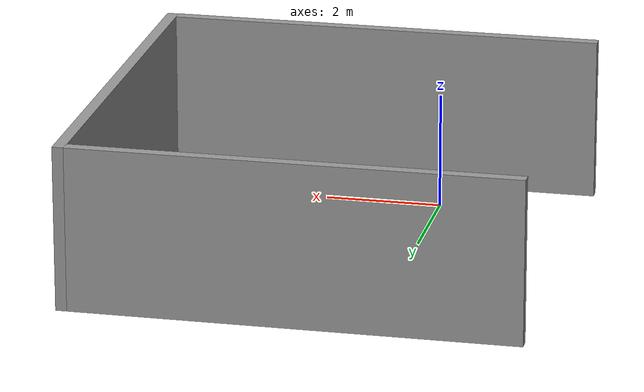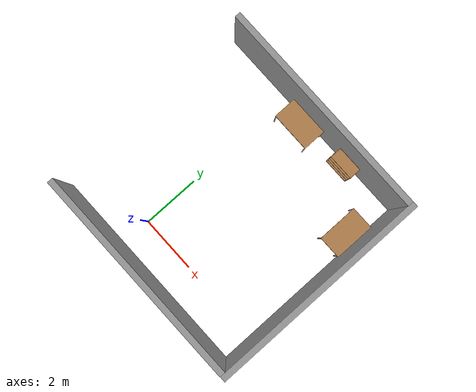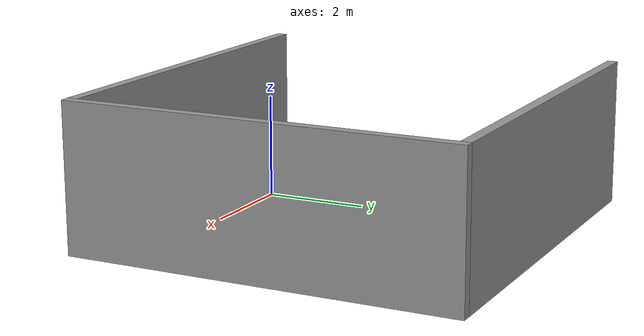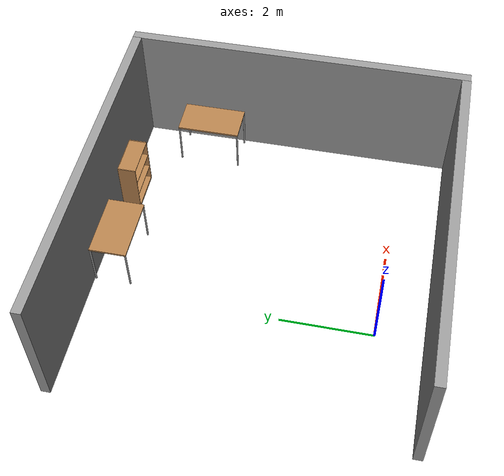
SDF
<sdf version="1.6">
 <world name="default">
  <model name="bookshelf">
   <static>1</static>
   <link name="link">
    <inertial><mass>1</mass></inertial>
    <collision name="back">
     <pose>0 0.005 0.6 0 -0 0</pose>
     <geometry><box><size>0.9 0.01 1.2</size></box></geometry>
    </collision>
    <visual name="visual1">
     <pose>0 0.005 0.6 0 -0 0</pose>
     <geometry><box><size>0.9 0.01 1.2</size></box></geometry>
     <material>
      <script><uri>file://media/materials/scripts/gazebo.material</uri><name>Gazebo/Wood</name></script>
     </material>
    </visual>
    <collision name="left_side">
     <pose>0.45 -0.195 0.6 0 -0 0</pose>
     <geometry><box><size>0.02 0.4 1.2</size></box></geometry>
    </collision>
    <visual name="visual2">
     <pose>0.45 -0.195 0.6 0 -0 0</pose>
     <geometry><box><size>0.02 0.4 1.2</size></box></geometry>
     <material>
      <script><uri>file://media/materials/scripts/gazebo.material</uri><name>Gazebo/Wood</name></script>
     </material>
    </visual>
    <collision name="right_side">
     <pose>-0.45 -0.195 0.6 0 -0 0</pose>
     <geometry><box><size>0.02 0.4 1.2</size></box></geometry>
    </collision>
    <visual name="visual3">
     <pose>-0.45 -0.195 0.6 0 -0 0</pose>
     <geometry><box><size>0.02 0.4 1.2</size></box></geometry>
     <material>
      <script><uri>file://media/materials/scripts/gazebo.material</uri><name>Gazebo/Wood</name></script>
     </material>
    </visual>
    <collision name="bottom">
     <pose>0 -0.195 0.03 0 -0 0</pose>
     <geometry><box><size>0.88 0.4 0.06</size></box></geometry>
    </collision>
    <visual name="visual4">
     <pose>0 -0.195 0.03 0 -0 0</pose>
     <geometry><box><size>0.88 0.4 0.06</size></box></geometry>
     <material>
      <script><uri>file://media/materials/scripts/gazebo.material</uri><name>Gazebo/Wood</name></script>
     </material>
    </visual>
    <collision name="top">
     <pose>0 -0.195 1.19 0 -0 0</pose>
     <geometry><box><size>0.88 0.4 0.02</size></box></geometry>
    </collision>
    <visual name="visual5">
     <pose>0 -0.195 1.19 0 -0 0</pose>
     <geometry><box><size>0.88 0.4 0.02</size></box></geometry>
     <material>
      <script><uri>file://media/materials/scripts/gazebo.material</uri><name>Gazebo/Wood</name></script>
     </material>
    </visual>
    <collision name="low_shelf">
     <pose>0 -0.195 0.43 0 -0 0</pose>
     <geometry><box><size>0.88 0.4 0.02</size></box></geometry>
    </collision>
    <visual name="visual6">
     <pose>0 -0.195 0.43 0 -0 0</pose>
     <geometry><box><size>0.88 0.4 0.02</size></box></geometry>
     <material>
      <script><uri>file://media/materials/scripts/gazebo.material</uri><name>Gazebo/Wood</name></script>
     </material>
    </visual>
    <collision name="high_shelf">
     <pose>0 -0.195 0.8 0 -0 0</pose>
     <geometry><box><size>0.88 0.4 0.02</size></box></geometry>
    </collision>
    <visual name="visual7">
     <pose>0 -0.195 0.8 0 -0 0</pose>
     <geometry><box><size>0.88 0.4 0.02</size></box></geometry>
     <material>
      <script><uri>file://media/materials/scripts/gazebo.material</uri><name>Gazebo/Wood</name></script>
     </material>
    </visual>
    <velocity_decay><linear>0</linear><angular>0</angular></velocity_decay>
   </link>
   <pose>2.86492 6.07043 0 0 -0 0</pose>
  </model>
  <model name="grey_wall_0">
   <static>1</static>
   <link name="link">
    <pose>0 0 1.4 0 -0 0</pose>
    <collision name="collision"><geometry><box><size>7.5 0.2 2.8</size></box></geometry></collision>
    <visual name="visual">
     <cast_shadows>0</cast_shadows>
     <geometry><box><size>7.5 0.2 2.8</size></box></geometry>
     <material>
      <script>
       <uri>model://grey_wall/materials/scripts</uri>
       <uri>model://grey_wall/materials/textures</uri>
       <name>vrc/grey_wall</name>
      </script>
     </material>
    </visual>
   </link>
   <pose>1.21272 6.18656 0 0 -0 0</pose>
  </model>
  <model name="grey_wall_0_clone">
   <static>1</static>
   <link name="link">
    <pose>0 0 1.4 0 -0 0</pose>
    <collision name="collision"><geometry><box><size>7.5 0.2 2.8</size></box></geometry></collision>
    <visual name="visual">
     <cast_shadows>0</cast_shadows>
     <geometry><box><size>7.5 0.2 2.8</size></box></geometry>
     <material>
      <script>
       <uri>model://grey_wall/materials/scripts</uri>
       <uri>model://grey_wall/materials/textures</uri>
       <name>vrc/grey_wall</name>
      </script>
     </material>
    </visual>
   </link>
   <pose>1.20599 -1.12598 0 0 -0 0</pose>
  </model>
  <model name="grey_wall_clone">
   <static>1</static>
   <link name="link">
    <pose>0 0 1.4 0 -0 0</pose>
    <collision name="collision"><geometry><box><size>7.5 0.2 2.8</size></box></geometry></collision>
    <visual name="visual">
     <cast_shadows>0</cast_shadows>
     <geometry><box><size>7.5 0.2 2.8</size></box></geometry>
     <material>
      <script>
       <uri>model://grey_wall/materials/scripts</uri>
       <uri>model://grey_wall/materials/textures</uri>
       <name>vrc/grey_wall</name>
      </script>
     </material>
    </visual>
   </link>
   <pose>5.0505 2.53584 0 0 -0 1.57079</pose>
  </model>
  <model name="table">
   <static>0</static>
   <link name="link">
    <collision name="surface">
     <pose>0 0 1 0 -0 0</pose>
     <geometry><box><size>1.5 0.8 0.03</size></box></geometry>
     <surface><friction><ode><mu>0.6</mu><mu2>0.6</mu2></ode></friction></surface>
    </collision>
    <visual name="visual1">
     <pose>0 0 1 0 -0 0</pose>
     <geometry><box><size>1.4 0.8 0.04</size></box></geometry>
     <material>
      <script><uri>file://media/materials/scripts/gazebo.material</uri><name>Gazebo/Wood</name></script>
     </material>
    </visual>
    <collision name="front_left_leg">
     <pose>0.68 0.38 0.5 0 -0 0</pose>
     <geometry><cylinder><radius>0.02</radius><length>1</length></cylinder></geometry>
    </collision>
    <visual name="front_left_leg">
     <pose>0.68 0.38 0.5 0 -0 0</pose>
     <geometry><cylinder><radius>0.02</radius><length>1</length></cylinder></geometry>
     <material>
      <script><uri>file://media/materials/scripts/gazebo.material</uri><name>Gazebo/Grey</name></script>
     </material>
    </visual>
    <collision name="front_right_leg">
     <pose>0.68 -0.38 0.5 0 -0 0</pose>
     <geometry><cylinder><radius>0.02</radius><length>1</length></cylinder></geometry>
    </collision>
    <visual name="front_right_leg">
     <pose>0.68 -0.38 0.5 0 -0 0</pose>
     <geometry><cylinder><radius>0.02</radius><length>1</length></cylinder></geometry>
     <material>
      <script><uri>file://media/materials/scripts/gazebo.material</uri><name>Gazebo/Grey</name></script>
     </material>
    </visual>
    <collision name="back_right_leg">
     <pose>-0.68 -0.38 0.5 0 -0 0</pose>
     <geometry><cylinder><radius>0.02</radius><length>1</length></cylinder></geometry>
    </collision>
    <visual name="back_right_leg">
     <pose>-0.68 -0.38 0.5 0 -0 0</pose>
     <geometry><cylinder><radius>0.02</radius><length>1</length></cylinder></geometry>
     <material>
      <script><uri>file://media/materials/scripts/gazebo.material</uri><name>Gazebo/Grey</name></script>
     </material>
    </visual>
    <collision name="back_left_leg">
     <pose>-0.68 0.38 0.5 0 -0 0</pose>
     <geometry><cylinder><radius>0.02</radius><length>1</length></cylinder></geometry>
    </collision>
    <visual name="back_left_leg">
     <pose>-0.68 0.38 0.5 0 -0 0</pose>
     <geometry><cylinder><radius>0.02</radius><length>1</length></cylinder></geometry>
     <material>
      <script><uri>file://media/materials/scripts/gazebo.material</uri><name>Gazebo/Grey</name></script>
     </material>
    </visual>
    <inertial>
     <inertia><ixx>1</ixx><ixy>0</ixy><ixz>0</ixz><iyy>1</iyy><iyz>0</iyz><izz>1</izz></inertia>
     <mass>1</mass>
    </inertial>
   </link>
   <pose>0.978898 5.67676 -0.000134 0 0.000205 0</pose>
  </model>
  <model name="table_0">
   <static>0</static>
   <link name="link">
    <collision name="surface">
     <pose>0 0 1 0 -0 0</pose>
     <geometry><box><size>1.5 0.8 0.03</size></box></geometry>
     <surface><friction><ode><mu>0.6</mu><mu2>0.6</mu2></ode></friction></surface>
    </collision>
    <visual name="visual1">
     <pose>0 0 1 0 -0 0</pose>
     <geometry><box><size>1.4 0.8 0.04</size></box></geometry>
     <material>
      <script><uri>file://media/materials/scripts/gazebo.material</uri><name>Gazebo/Wood</name></script>
     </material>
    </visual>
    <collision name="front_left_leg">
     <pose>0.68 0.38 0.5 0 -0 0</pose>
     <geometry><cylinder><radius>0.02</radius><length>1</length></cylinder></geometry>
    </collision>
    <visual name="front_left_leg">
     <pose>0.68 0.38 0.5 0 -0 0</pose>
     <geometry><cylinder><radius>0.02</radius><length>1</length></cylinder></geometry>
     <material>
      <script><uri>file://media/materials/scripts/gazebo.material</uri><name>Gazebo/Grey</name></script>
     </material>
    </visual>
    <collision name="front_right_leg">
     <pose>0.68 -0.38 0.5 0 -0 0</pose>
     <geometry><cylinder><radius>0.02</radius><length>1</length></cylinder></geometry>
    </collision>
    <visual name="front_right_leg">
     <pose>0.68 -0.38 0.5 0 -0 0</pose>
     <geometry><cylinder><radius>0.02</radius><length>1</length></cylinder></geometry>
     <material>
      <script><uri>file://media/materials/scripts/gazebo.material</uri><name>Gazebo/Grey</name></script>
     </material>
    </visual>
    <collision name="back_right_leg">
     <pose>-0.68 -0.38 0.5 0 -0 0</pose>
     <geometry><cylinder><radius>0.02</radius><length>1</length></cylinder></geometry>
    </collision>
    <visual name="back_right_leg">
     <pose>-0.68 -0.38 0.5 0 -0 0</pose>
     <geometry><cylinder><radius>0.02</radius><length>1</length></cylinder></geometry>
     <material>
      <script><uri>file://media/materials/scripts/gazebo.material</uri><name>Gazebo/Grey</name></script>
     </material>
    </visual>
    <collision name="back_left_leg">
     <pose>-0.68 0.38 0.5 0 -0 0</pose>
     <geometry><cylinder><radius>0.02</radius><length>1</length></cylinder></geometry>
    </collision>
    <visual name="back_left_leg">
     <pose>-0.68 0.38 0.5 0 -0 0</pose>
     <geometry><cylinder><radius>0.02</radius><length>1</length></cylinder></geometry>
     <material>
      <script><uri>file://media/materials/scripts/gazebo.material</uri><name>Gazebo/Grey</name></script>
     </material>
    </visual>
    <inertial>
     <inertia><ixx>1</ixx><ixy>0</ixy><ixz>0</ixz><iyy>1</iyy><iyz>0</iyz><izz>1</izz></inertia>
     <mass>1</mass>
    </inertial>
   </link>
   <pose>4.49148 4.44802 -0.000136 5e-06 0.000208 1.57063</pose>
  </model>
 </world>
</sdf>
